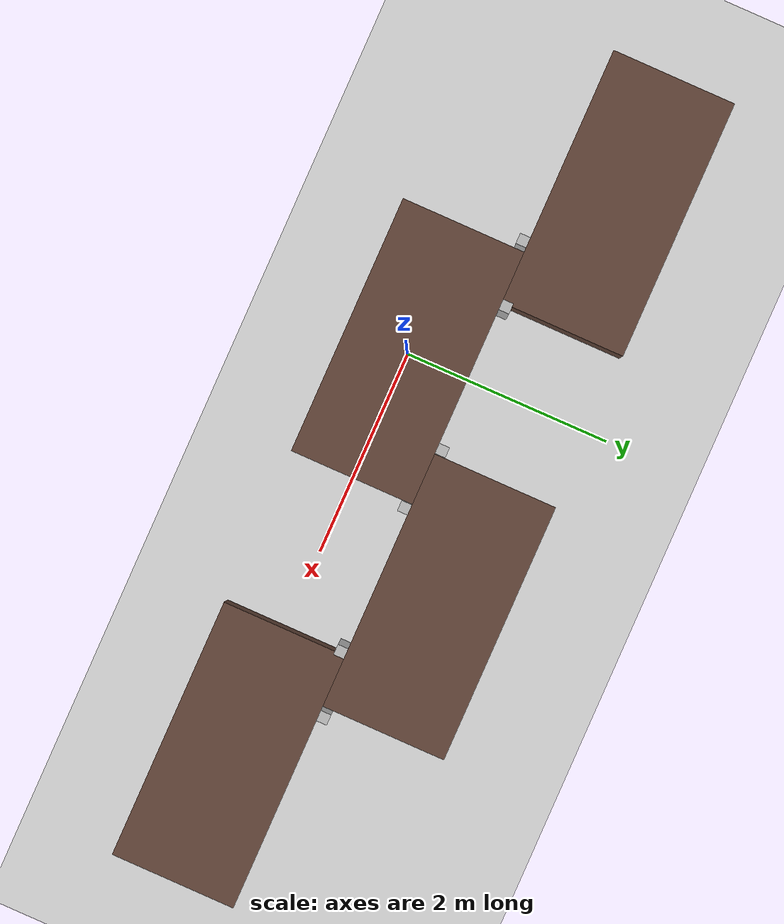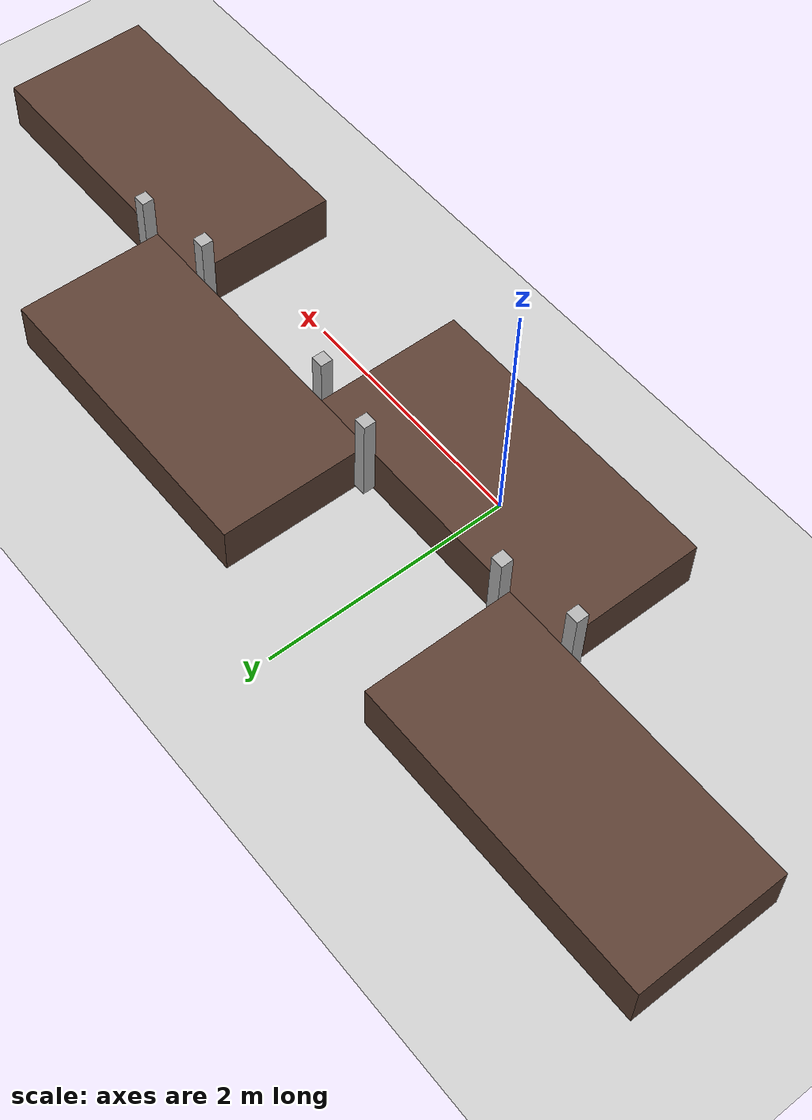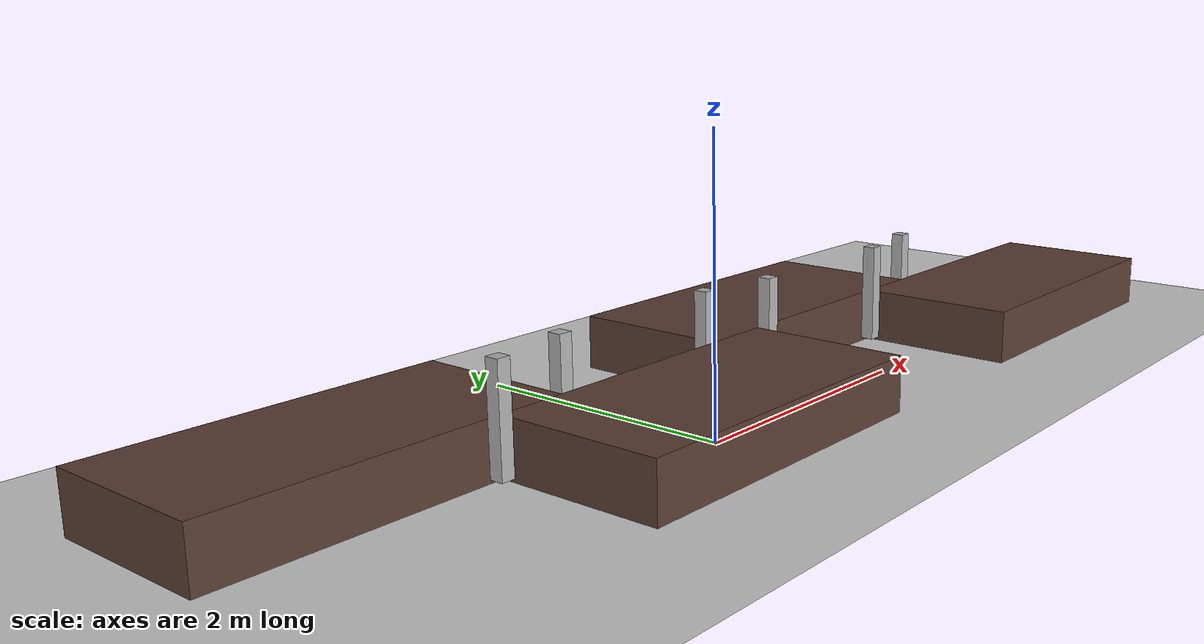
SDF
<?xml version='1.0'?>
<sdf version='1.9'>
  <world name='Obj6'>
    <physics name='1ms' type='ignored'>
      <max_step_size>0.001</max_step_size>
      <real_time_factor>1</real_time_factor>
      <real_time_update_rate>1000</real_time_update_rate>
    </physics>
    <plugin name='gz::sim::systems::Physics' filename='ignition-gazebo-physics-system' />
    <plugin name='gz::sim::systems::UserCommands' filename='ignition-gazebo-user-commands-system' />
    <plugin name='gz::sim::systems::SceneBroadcaster'
      filename='ignition-gazebo-scene-broadcaster-system' />
    <plugin name='gz::sim::systems::Contact' filename='ignition-gazebo-contact-system' />
    <gravity>0 0 -9.8</gravity>
    <magnetic_field>6e-06 2.3e-05 -4.2e-05</magnetic_field>
    <atmosphere type='adiabatic' />
    <scene>
      <ambient>0.4 0.4 0.4 1</ambient>
      <background>0.7 0.7 0.7 1</background>
      <shadows>true</shadows>
    </scene>
    <model name='ground_plane'>
      <static>true</static>
      <link name='link'>
        <collision name='collision'>
          <geometry>
            <plane>
              <normal>0 0 1</normal>
              <size>100 100</size>
            </plane>
          </geometry>
          <surface>
            <friction>
              <ode />
            </friction>
            <bounce />
            <contact />
          </surface>
        </collision>
        <visual name='visual'>
          <geometry>
            <plane>
              <normal>0 0 1</normal>
              <size>100 100</size>
            </plane>
          </geometry>
          <material>
            <ambient>0.8 0.8 0.8 1</ambient>
            <diffuse>0.8 0.8 0.8 1</diffuse>
            <specular>0.8 0.8 0.8 1</specular>
          </material>
        </visual>
        <pose>0 0 0 0 -0 0</pose>
        <inertial>
          <pose>0 0 0 0 -0 0</pose>
          <mass>1</mass>
          <inertia>
            <ixx>1</ixx>
            <ixy>0</ixy>
            <ixz>0</ixz>
            <iyy>1</iyy>
            <iyz>0</iyz>
            <izz>1</izz>
          </inertia>
        </inertial>
        <enable_wind>false</enable_wind>
      </link>
      <pose>0 0 0 0 -0 0</pose>
      <self_collide>false</self_collide>
    </model>
    <model name='Pallet_Terrain'>
      <pose>0 0 -0.3 0 -0 0</pose>
      <link name='Plt1'>
        <pose>0 0 0.5 0 -0 0</pose>
        <inertial>
          <inertia>
            <ixx>0.16666</ixx>
            <ixy>0</ixy>
            <ixz>0</ixz>
            <iyy>0.16666</iyy>
            <iyz>0</iyz>
            <izz>0.16666</izz>
          </inertia>
          <mass>1</mass>
          <pose>0 0 0 0 -0 0</pose>
        </inertial>
        <collision name='Plt1_collision'>
          <geometry>
            <box>
              <size>2.5 1.2 0.4</size>
            </box>
          </geometry>
          <surface>
            <friction>
              <ode />
            </friction>
            <bounce />
            <contact />
          </surface>
        </collision>
        <visual name='Plt1_visual'>
          <geometry>
            <box>
              <size>2.5 1.2 0.4</size>
            </box>
          </geometry>
          <material>
            <ambient>0.36 0.25 0.2 1</ambient>
            <diffuse>0.36 0.25 0.2 1</diffuse>
            <specular>0.2 0.15 0.1 1</specular>
          </material>
        </visual>
        <pose>0 0 0 0 -0 0</pose>
        <enable_wind>false</enable_wind>
      </link>
      <link name='Plt2'>
        <pose>2 1.2 0.5 0 -0 0</pose>
        <inertial>
          <inertia>
            <ixx>0.16666</ixx>
            <ixy>0</ixy>
            <ixz>0</ixz>
            <iyy>0.16666</iyy>
            <iyz>0</iyz>
            <izz>0.16666</izz>
          </inertia>
          <mass>1</mass>
          <pose>0 0 0 0 -0 0</pose>
        </inertial>
        <collision name='Plt2_collision'>
          <geometry>
            <box>
              <size>2.5 1.2 0.4</size>
            </box>
          </geometry>
          <surface>
            <friction>
              <ode />
            </friction>
            <bounce />
            <contact />
          </surface>
        </collision>
        <visual name='Plt2_visual'>
          <geometry>
            <box>
              <size>2.5 1.2 0.4</size>
            </box>
          </geometry>
          <material>
            <ambient>0.36 0.25 0.2 1</ambient>
            <diffuse>0.36 0.25 0.2 1</diffuse>
            <specular>0.2 0.15 0.1 1</specular>
          </material>
        </visual>
        <pose>0 0 0 0 -0 0</pose>
        <enable_wind>false</enable_wind>
      </link>
      <link name='Plt3'>
        <pose>-2 1.2 0.5 0 -0 0</pose>
        <inertial>
          <inertia>
            <ixx>0.16666</ixx>
            <ixy>0</ixy>
            <ixz>0</ixz>
            <iyy>0.16666</iyy>
            <iyz>0</iyz>
            <izz>0.16666</izz>
          </inertia>
          <mass>1</mass>
          <pose>0 0 0 0 -0 0</pose>
        </inertial>
        <collision name='Plt3_collision'>
          <geometry>
            <box>
              <size>2.5 1.2 0.4</size>
            </box>
          </geometry>
          <surface>
            <friction>
              <ode />
            </friction>
            <bounce />
            <contact />
          </surface>
        </collision>
        <visual name='Plt3_visual'>
          <geometry>
            <box>
              <size>2.5 1.2 0.4</size>
            </box>
          </geometry>
          <material>
            <ambient>0.36 0.25 0.2 1</ambient>
            <diffuse>0.36 0.25 0.2 1</diffuse>
            <specular>0.2 0.15 0.1 1</specular>
          </material>
        </visual>
        <pose>0 0 0 0 -0 0</pose>
        <enable_wind>false</enable_wind>
      </link>
      <link name='Plt4'>
        <pose>4 0 0.5 0 -0 0</pose>
        <inertial>
          <inertia>
            <ixx>0.16666</ixx>
            <ixy>0</ixy>
            <ixz>0</ixz>
            <iyy>0.16666</iyy>
            <iyz>0</iyz>
            <izz>0.16666</izz>
          </inertia>
          <mass>1</mass>
          <pose>0 0 0 0 -0 0</pose>
        </inertial>
        <collision name='Plt4_collision'>
          <geometry>
            <box>
              <size>2.5 1.2 0.4</size>
            </box>
          </geometry>
          <surface>
            <friction>
              <ode />
            </friction>
            <bounce />
            <contact />
          </surface>
        </collision>
        <visual name='Plt4_visual'>
          <geometry>
            <box>
              <size>2.5 1.2 0.4</size>
            </box>
          </geometry>
          <material>
            <ambient>0.36 0.25 0.2 1</ambient>
            <diffuse>0.36 0.25 0.2 1</diffuse>
            <specular>0.2 0.15 0.1 1</specular>
          </material>
        </visual>
        <pose>0 0 0 0 -0 0</pose>
        <enable_wind>false</enable_wind>
      </link>

      <link name='BarA1'>
        <pose relative_to='Plt3'>0.7 -0.65 0.2 0 -0 0</pose>
        <inertial>
          <inertia>
            <ixx>0.16666</ixx>
            <ixy>0</ixy>
            <ixz>0</ixz>
            <iyy>0.16666</iyy>
            <iyz>0</iyz>
            <izz>0.16666</izz>
          </inertia>
          <mass>1</mass>
          <pose>0 0 0 0 -0 0</pose>
        </inertial>
        <collision name='BarA1_collision'>
          <geometry>
            <box>
              <size>0.1 0.1 0.75</size>
            </box>
          </geometry>
          <surface>
            <friction>
              <ode />
            </friction>
            <bounce />
            <contact />
          </surface>
        </collision>
        <visual name='BarA1_visual'>
          <geometry>
            <box>
              <size>0.1 0.1 0.75</size>
            </box>
          </geometry>
          <material>
            <ambient>0.3 0.3 0.3 1</ambient>
            <diffuse>0.7 0.7 0.7 1</diffuse>
            <specular>1 1 1 1</specular>
          </material>
        </visual>
        <pose>0 0 0 0 -0 0</pose>
        <enable_wind>false</enable_wind>
      </link>

      <link name='BarA2'>
        <pose relative_to='Plt3'>1.3 -0.55 0.2 0 -0 0</pose>
        <inertial>
          <inertia>
            <ixx>0.16666</ixx>
            <ixy>0</ixy>
            <ixz>0</ixz>
            <iyy>0.16666</iyy>
            <iyz>0</iyz>
            <izz>0.16666</izz>
          </inertia>
          <mass>1</mass>
          <pose>0 0 0 0 -0 0</pose>
        </inertial>
        <collision name='BarA2_collision'>
          <geometry>
            <box>
              <size>0.1 0.1 0.75</size>
            </box>
          </geometry>
          <surface>
            <friction>
              <ode />
            </friction>
            <bounce />
            <contact />
          </surface>
        </collision>
        <visual name='BarA2_visual'>
          <geometry>
            <box>
              <size>0.1 0.1 0.75</size>
            </box>
          </geometry>
          <material>
            <ambient>0.3 0.3 0.3 1</ambient>
            <diffuse>0.7 0.7 0.7 1</diffuse>
            <specular>1 1 1 1</specular>
          </material>
        </visual>
        <pose>0 0 0 0 -0 0</pose>
        <enable_wind>false</enable_wind>
      </link>

      <link name='BarA3'>
        <pose relative_to='Plt1'>1.3 0.55 0.2 0 -0 0</pose>
        <inertial>
          <inertia>
            <ixx>0.16666</ixx>
            <ixy>0</ixy>
            <ixz>0</ixz>
            <iyy>0.16666</iyy>
            <iyz>0</iyz>
            <izz>0.16666</izz>
          </inertia>
          <mass>1</mass>
          <pose>0 0 0 0 -0 0</pose>
        </inertial>
        <collision name='BarA3_collision'>
          <geometry>
            <box>
              <size>0.1 0.1 0.75</size>
            </box>
          </geometry>
          <surface>
            <friction>
              <ode />
            </friction>
            <bounce />
            <contact />
          </surface>
        </collision>
        <visual name='BarA3_visual'>
          <geometry>
            <box>
              <size>0.1 0.1 0.75</size>
            </box>
          </geometry>
          <material>
            <ambient>0.3 0.3 0.3 1</ambient>
            <diffuse>0.7 0.7 0.7 1</diffuse>
            <specular>1 1 1 1</specular>
          </material>
        </visual>
        <pose>0 0 0 0 -0 0</pose>
        <enable_wind>false</enable_wind>
      </link>

      <link name='BarA4'>
        <pose relative_to='Plt1'>0.7 0.65 0.2 0 -0 0</pose>
        <inertial>
          <inertia>
            <ixx>0.16666</ixx>
            <ixy>0</ixy>
            <ixz>0</ixz>
            <iyy>0.16666</iyy>
            <iyz>0</iyz>
            <izz>0.16666</izz>
          </inertia>
          <mass>1</mass>
          <pose>0 0 0 0 -0 0</pose>
        </inertial>
        <collision name='BarA4_collision'>
          <geometry>
            <box>
              <size>0.1 0.1 0.75</size>
            </box>
          </geometry>
          <surface>
            <friction>
              <ode />
            </friction>
            <bounce />
            <contact />
          </surface>
        </collision>
        <visual name='BarA4_visual'>
          <geometry>
            <box>
              <size>0.1 0.1 0.75</size>
            </box>
          </geometry>
          <material>
            <ambient>0.3 0.3 0.3 1</ambient>
            <diffuse>0.7 0.7 0.7 1</diffuse>
            <specular>1 1 1 1</specular>
          </material>
        </visual>
        <pose>0 0 0 0 -0 0</pose>
        <enable_wind>false</enable_wind>
      </link>

      <link name='BarA5'>
        <pose relative_to='Plt2'>0.7 -0.65 0.2 0 -0 0</pose>
        <inertial>
          <inertia>
            <ixx>0.16666</ixx>
            <ixy>0</ixy>
            <ixz>0</ixz>
            <iyy>0.16666</iyy>
            <iyz>0</iyz>
            <izz>0.16666</izz>
          </inertia>
          <mass>1</mass>
          <pose>0 0 0 0 -0 0</pose>
        </inertial>
        <collision name='BarA5_collision'>
          <geometry>
            <box>
              <size>0.1 0.1 0.75</size>
            </box>
          </geometry>
          <surface>
            <friction>
              <ode />
            </friction>
            <bounce />
            <contact />
          </surface>
        </collision>
        <visual name='BarA5_visual'>
          <geometry>
            <box>
              <size>0.1 0.1 0.75</size>
            </box>
          </geometry>
          <material>
            <ambient>0.3 0.3 0.3 1</ambient>
            <diffuse>0.7 0.7 0.7 1</diffuse>
            <specular>1 1 1 1</specular>
          </material>
        </visual>
        <pose>0 0 0 0 -0 0</pose>
        <enable_wind>false</enable_wind>
      </link>

      <link name='BarA6'>
        <pose relative_to='Plt2'>1.3 -0.55 0.2 0 -0 0</pose>
        <inertial>
          <inertia>
            <ixx>0.16666</ixx>
            <ixy>0</ixy>
            <ixz>0</ixz>
            <iyy>0.16666</iyy>
            <iyz>0</iyz>
            <izz>0.16666</izz>
          </inertia>
          <mass>1</mass>
          <pose>0 0 0 0 -0 0</pose>
        </inertial>
        <collision name='BarA6_collision'>
          <geometry>
            <box>
              <size>0.1 0.1 0.75</size>
            </box>
          </geometry>
          <surface>
            <friction>
              <ode />
            </friction>
            <bounce />
            <contact />
          </surface>
        </collision>
        <visual name='BarA6_visual'>
          <geometry>
            <box>
              <size>0.1 0.1 0.75</size>
            </box>
          </geometry>
          <material>
            <ambient>0.3 0.3 0.3 1</ambient>
            <diffuse>0.7 0.7 0.7 1</diffuse>
            <specular>1 1 1 1</specular>
          </material>
        </visual>
        <pose>0 0 0 0 -0 0</pose>
        <enable_wind>false</enable_wind>
      </link>

      <static>true</static>
      <self_collide>false</self_collide>
    </model>

    <light name='sun' type='directional'>
      <pose>0 0 10 0 -0 0</pose>
      <cast_shadows>true</cast_shadows>
      <intensity>1</intensity>
      <direction>-0.5 0.1 -0.9</direction>
      <diffuse>0.8 0.8 0.8 1</diffuse>
      <specular>0.2 0.2 0.2 1</specular>
      <attenuation>
        <range>1000</range>
        <linear>0.01</linear>
        <constant>0.90000000000000002</constant>
        <quadratic>0.001</quadratic>
      </attenuation>
      <spot>
        <inner_angle>0</inner_angle>
        <outer_angle>0</outer_angle>
        <falloff>0</falloff>
      </spot>
    </light>
  </world>
</sdf>
